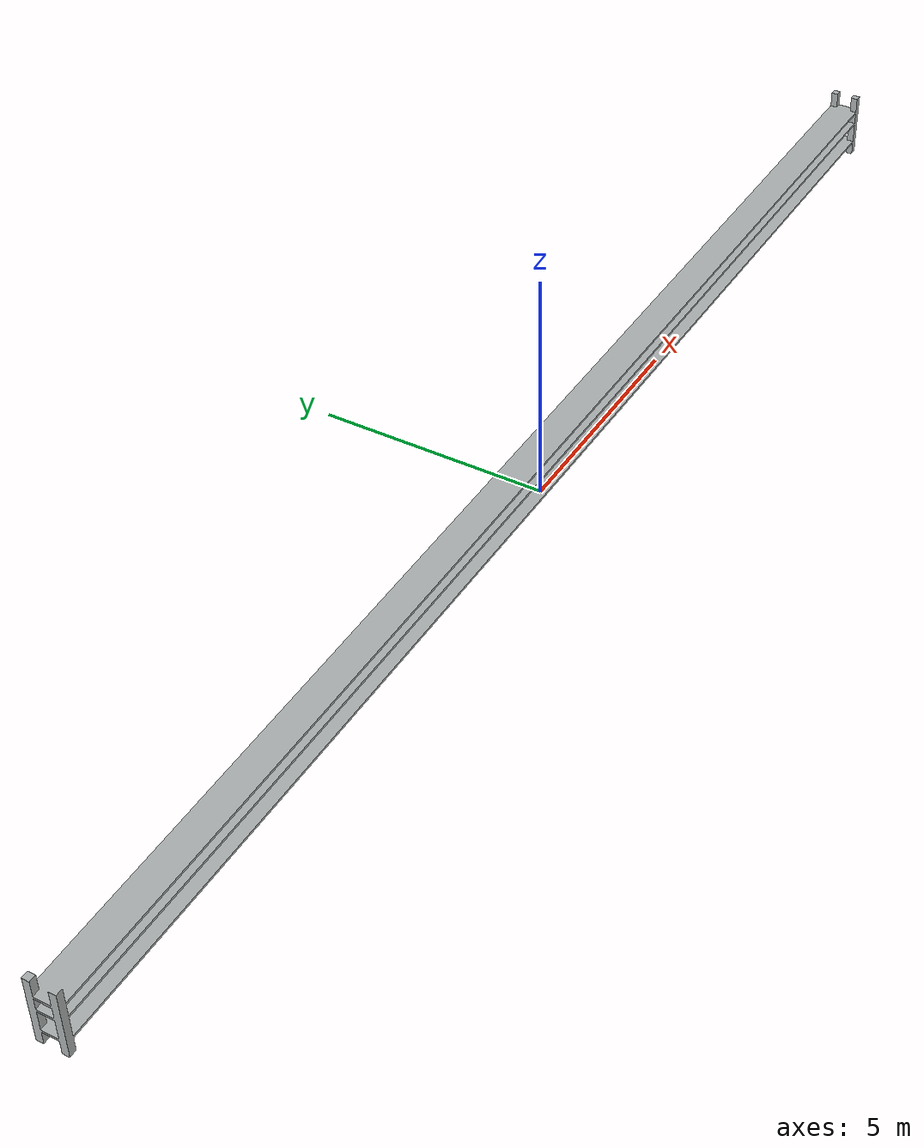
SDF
<?xml version="1.0"?>
<sdf version="1.7">
  <model name="greenhouse_shelf_metal">

    <!-- Shelf won't move -->
    <static>true</static>

    <link name="shelf_link">

      <!-- Original visual mesh, with Gazebo Sim color fallback. -->
      <visual name="shelf_visual">
        <geometry>
          <mesh>
            <uri>model://greenhouse_shelf/meshes/greenhouse_shelf.stl</uri>
            <scale>1 1 1</scale>
          </mesh>
        </geometry>
        <material>
          <ambient>0.42 0.44 0.45 1</ambient>
          <diffuse>0.68 0.70 0.70 1</diffuse>
          <specular>0.35 0.35 0.35 1</specular>
        </material>
      </visual>

      <!-- Collision mesh -->
      <collision name="shelf_collision">
        <geometry>
          <mesh>
            <uri>model://greenhouse_shelf/meshes/greenhouse_shelf.stl</uri>
            <scale>1 1 1</scale>
          </mesh>
        </geometry>
      </collision>

    </link>

  </model>
</sdf>
